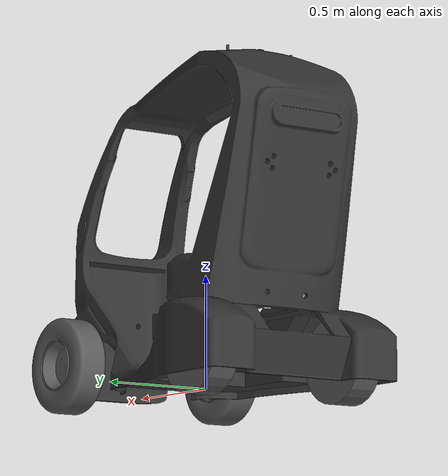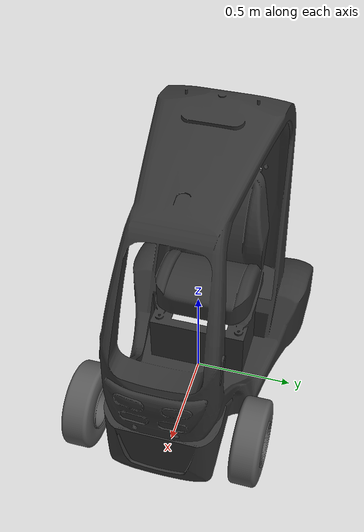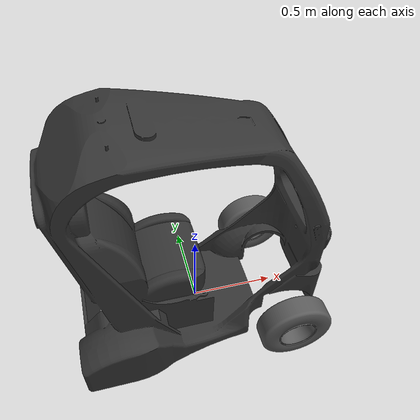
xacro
<?xml version="1.0"?>

<robot xmlns:xacro="http://www.ros.org/wiki/xacro" name="urban">

    <xacro:arg name="gpu" default="false"/>
    <xacro:property name="gpu" value="$(arg gpu)" />
    <xacro:arg name="organize_cloud" default="false"/>
    <xacro:property name="organize_cloud" value="$(arg organize_cloud)" />
    <xacro:arg name="enable_velodyne" default="false"/>
    <xacro:property name="enable_velodyne" value="$(arg enable_velodyne)"/>
    <xacro:arg name="enable_camera" default="false"/>
    <xacro:property name="enable_camera" value="$(arg enable_camera)"/>
    <xacro:arg name="enable_imu" default="false"/>
    <xacro:property name="enable_imu" value="$(arg enable_imu)"/>
    <xacro:arg name="enable_gps" default="false"/>
    <xacro:property name="enable_gps" value="$(arg enable_gps)"/>

    <!-- Include -->
    <xacro:include filename="$(find spawn_car)/model/urban/urdf/bases/urban_body.urdf.xacro"/>
    <xacro:include filename="$(find spawn_car)/model/urban/urdf/wheels/urban_suspension.urdf.xacro"/>
    <xacro:include filename="$(find spawn_car)/model/urban/urdf/vehicle_properties.urdf.xacro"/>
    <xacro:include filename="$(find spawn_car)/model/urban/urdf/sensors/camera.urdf.xacro"/>
    <xacro:include filename="$(find spawn_car)/model/urban/urdf/sensors/vlp-16.urdf.xacro"/>
    <xacro:include filename="$(find spawn_car)/model/urban/urdf/sensors/_d435.urdf.xacro"/>
    <xacro:include filename="$(find spawn_car)/model/urban/urdf/sensors/imu.urdf.xacro"/>
    <xacro:include filename="$(find spawn_car)/model/urban/urdf/sensors/gps.urdf.xacro"/>
    <xacro:include filename="$(find spawn_car)/model/urban/urdf/materials.urdf.xacro"/>

    <!-- Robots Elements -->
    <xacro:urban_base name="urban"/>
    <xacro:Front_Right_Wheel/>
    <xacro:Front_Left_Wheel/>
    <xacro:Rear_Right_Wheel/>
    <xacro:Rear_Left_Wheel/>

    <!-- Conditional sensor loading -->
    <xacro:if value="${enable_velodyne}">
        <xacro:VLP-16 parent="chassis" name="velodyne" topic="/velodyne_points" organize_cloud="${organize_cloud}" hz="10" samples="440" gpu="${gpu}">
            <origin xyz="0.3 0 1.30" rpy="0 0 0" />
        </xacro:VLP-16>
    </xacro:if>

    <xacro:if value="${enable_camera}">
        <xacro:sensor_d435 name="camera" topics_ns="camera" parent="chassis" publish_pointcloud="true">
            <origin xyz="0.8 0 0.4" rpy="0 0 0" />
        </xacro:sensor_d435>
    </xacro:if>

    <xacro:if value="${enable_imu}">
        <xacro:imu_sensor parent="chassis" name="imu">
            <origin xyz="0 0 0.5" rpy="0 0 0"/>
        </xacro:imu_sensor>
    </xacro:if>

    <xacro:if value="${enable_gps}">
        <xacro:gps_sensor parent="chassis" name="gps">
            <origin xyz="0 0 0.6" rpy="0 0 0"/>
        </xacro:gps_sensor>
    </xacro:if>

      <gazebo>
        <plugin name="p3d" filename="libgazebo_ros_p3d.so">
          <bodyName>chassis</bodyName>
          <topicName>base_pose_ground_truth</topicName>
          <frameName>map</frameName>
          <updateRate>100.0</updateRate>
        </plugin>
      </gazebo>

      <gazebo>
        <plugin name="gazebo_ros_control" filename="libgazebo_ros_control.so">
          <robotNamespace>/urban_model</robotNamespace>
          <!--The two lines below came from: https://answers.ros.org/question/292444/gazebo_ros_control-plugin-gazeboroscontrolplugin-missing-legacymodens-defaultrobothwsim/-->
          <robotSimType>gazebo_ros_control/DefaultRobotHWSim</robotSimType>
          <legacyModeNS>true</legacyModeNS>
        </plugin>
      </gazebo>

      <transmission name="front_left_steer_trans">
        <type>transmission_interface/SimpleTransmission</type>
        <actuator name="left_steer">
          <mechanicalReduction>1</mechanicalReduction>
        </actuator>
          <joint name="front_left_steer_joint">

          <!--this is a  mechanism for ros_control, it can be position, velocity, effort or something
              to communicate with hardware. See: https://wiki.ros.org/ros_control-->
            <hardwareInterface>hardware_interface/PositionJointInterface</hardwareInterface>
          </joint>
      </transmission>

      <transmission name="front_right_steer_trans">
        <type>transmission_interface/SimpleTransmission</type>
        <actuator name="right_steer">
          <mechanicalReduction>1</mechanicalReduction>
        </actuator>
          <joint name="front_right_steer_joint">
            <hardwareInterface>hardware_interface/PositionJointInterface</hardwareInterface>
          </joint>
      </transmission>

      <transmission name="rear_left_wheel_trans">
        <type>transmission_interface/SimpleTransmission</type>
        <actuator name="rear_left_motor">
          <mechanicalReduction>1</mechanicalReduction>
        </actuator>
          <joint name="rear_left_wheel_joint">
            <hardwareInterface>hardware_interface/EffortJointInterface</hardwareInterface>
          </joint>
      </transmission>

      <transmission name="rear_right_wheel_trans">
        <type>transmission_interface/SimpleTransmission</type>
        <actuator name="rear_right_motor">
          <mechanicalReduction>1</mechanicalReduction>
        </actuator>
          <joint name="rear_right_wheel_joint">
            <hardwareInterface>hardware_interface/EffortJointInterface</hardwareInterface>
          </joint>
      </transmission>
</robot>

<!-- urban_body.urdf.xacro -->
<!--
Created on Thu Jan 18 2024

@author: hifzhil
-->
<robot xmlns:xacro="http://www.ros.org/wiki/xacro" name="urban">
    <xacro:include filename="$(find spawn_car)/model/urban/urdf/vehicle_properties.urdf.xacro"/>
    <xacro:include filename="$(find spawn_car)/model/urban/urdf/bases/urban_body.gazebo.xacro"/>

    <material name="chassis_mat">
        <color rgba="0.2 0.2 0.2 1"/>
        <!-- grey -->
    </material>

    <xacro:macro name="urban_base" params="name">
        <link name="dummy">
            <visual>
                <origin xyz="0.0 0.0 0.5" rpy="0 0 0"/>
                <geometry>
                    <box size="0.001 0.001 0.001"/>
                </geometry>
            </visual>
        </link>

        <joint name="world_to_vehicle_center" type="fixed">
            <parent link="dummy"/>
            <child link="chassis"/>
            <origin xyz="0.0 0.0 0.0"/>
            <axis xyz = "0 0 1"/>
        </joint>

        <link name="chassis">

            <visual>
                <origin xyz="0.0 0.0 0.0" rpy="1.57079632679 0 1.57079632679"/>
                <geometry>
                  <mesh filename="file://$(find spawn_car)/model/urban/meshes/Car_body_transformed.stl" scale="0.001 0.001 0.001"/>
                </geometry>
                <material name="chassis_mat">
                    <color rgba="0.2 0.2 0.2 1"/>
                    <!-- grey -->
                </material>
            </visual>

            <collision>
                <origin xyz="0.0 0.0 0.0" rpy="1.57079632679 0 1.57079632679"/>
                <geometry>
                  <mesh filename="file://$(find spawn_car)/model/urban/meshes/Car_body_transformed.stl" scale="0.001 0.001 0.001"/>
                </geometry>
                <material name="chassis_mat">
                    <color rgba="0.2 0.2 0.2 1"/>
                    <!-- grey -->
                </material>
            </collision>

            <xacro:inertia_of_body/>
        </link>
    </xacro:macro>

</robot>

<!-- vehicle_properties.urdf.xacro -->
<!--
Created on Thu Jan 18 12:02:12 2024

@author: hifzhil
-->

<robot name="urban_properties" xmlns:xacro="http://www.ros.org/wiki/xacro">
    <!-- my name is urban-->

    <!-- CONSTANT -->
    <xacro:property name="pi_constant" value="3.14159265" />
    <xacro:property name = "degree_90" value="1.57079633"/>
    <xacro:property name = "degree_180" value="3.14159265"/>
    <xacro:property name = "degree_270" value="4.71239"/>
    <xacro:property name = "degree_360" value="6.28319"/>

    <xacro:property name="car_length" value="1.490" />
    <xacro:property name="car_width" value="0.830" />
    <xacro:property name="car_height" value="1.550" />
    <xacro:property name="front_overhang" value="0.220" />
    <xacro:property name="rear_overhang" value="0.280" />

    <!-- misalkan urban adalah balok -->
    <xacro:property name="vehicle_volume" value="${car_length*car_width*car_height}"/>

    <xacro:property name="ground_clearance" value="0.07" />
    <xacro:property name="wheel_base" value="0.98" />
    <!-- chassis -->
    <xacro:property name="chassis_width" value="0.830" />
    <xacro:property name="chassis_length" value="1.49" />
    <xacro:property name="chassis_thickness" value="1.00" />
    <xacro:property name="chassis_mass" value="250" />
       <!-- variable -->

    <!-- aluminium density is 2.7 g/cm³ or 2700 kg/m3-->
    <xacro:property name="body_density" value="2700.0" />
    <!-- density of all tyre brands is nearly the same which is around 1.1 gr/cm3 or 1100 kg/m3 -->
    <xacro:property name="wheel_density" value="1100.0" />

    <!-- fixed transformation
        this value on rad. 1.570795 is a phi/2
    -->
    <xacro:property name="wheel_cylindrical_transform" value="1.570795" />

    <xacro:property name="front_tyre_radius" value="0.19"/>
    <xacro:property name="front_tyre_width" value="0.125"/>
    <xacro:property name="front_tyre_mass" value="10.0"/>

    <xacro:property name="rear_tyre_radius" value="0.19"/>
    <xacro:property name="rear_tyre_width" value="0.125"/>
    <xacro:property name="rear_tyre_mass" value="10.0"/>

    <xacro:property name="front_track" value="0.830" />
    <xacro:property name="rear_track" value="0.750" />

    <!-- mass -->
    <!-- let assume the mass of box same as half aluminium at it size-->
    <xacro:property name="body_mass" value="${body_density*body_volume*(1/2)}"/>
    <xacro:property name="wheel_mass" value="${wheel_density*wheel_volume}"/>

    <!-- moment inertia of wheel -->
    <xacro:property name="Iz_wheel" value="${0.5*wheel_mass*wheel_radius*wheel_radius}"/>
    <xacro:property name="I_wheel" value="${1/12*wheel_mass*(3*wheel_radius*wheel_radius + wheel_length*wheel_length)}"/>

  <!-- this is macro that we can call it anywhere on code
      it defines all inertia component on the wheel
  -->
    <xacro:macro name="inertia_of_wheel">
        <inertial>
            <origin rpy="0 0 0" xyz="0 0 0"/>
            <mass value="${wheel_mass}"/>
            <inertia
                ixx="${I_wheel}"
                ixy="0.0"
                ixz="0.0"
                iyy="${I_wheel}"
                iyz="0.0"
                izz="${Iz_wheel}"
            />
        </inertial>
    </xacro:macro>

    <xacro:macro name="inertia_of_body">
        <inertial>
            <origin rpy="0 0 0" xyz="0 0 0"/>
            <mass value="${chassis_mass}"/>
            <inertia
                ixy="0.0"
                ixz="0.0"
                iyz="0.0"
                ixx = "${(1/12)*chassis_mass*(chassis_width*chassis_width + chassis_thickness*chassis_thickness)}"
                iyy = "${(1/12)*chassis_mass*(chassis_length*chassis_length + chassis_thickness*chassis_thickness)}"
                izz = "${(1/12)*chassis_mass*(chassis_length*chassis_length + chassis_width*chassis_width)}"
            />
        </inertial>
    </xacro:macro>
</robot>

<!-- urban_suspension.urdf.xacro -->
<!--
Created on Sat Jan 20 2024

@author: hifzhil
-->
<robot xmlns:xacro="http://www.ros.org/wiki/xacro" name="suspension urdf">

    <material name="tire_mat">
        <color rgba="0.35 0.35 0.35 1.0" />
    </material>

    <xacro:include filename="$(find spawn_car)/model/urban/urdf/wheels/suspension.gazebo.xacro"/>
    <xacro:include filename="$(find spawn_car)/model/urban/urdf/vehicle_properties.urdf.xacro"/>

    <xacro:property name="Iz_rear_wheel" value="${0.5*rear_tyre_mass*rear_tyre_radius*rear_tyre_radius}"/>
    <xacro:property name="I_rear_wheel" value="${1/12*rear_tyre_mass*(3*rear_tyre_radius*rear_tyre_radius + rear_tyre_width*rear_tyre_width)}"/>

    <xacro:property name="Iz_front_wheel" value="${0.5*front_tyre_mass*front_tyre_radius*front_tyre_radius}"/>
    <xacro:property name="I_front_wheel" value="${1/12*front_tyre_mass*(3*front_tyre_radius*front_tyre_radius + front_tyre_width*front_tyre_width)}"/>

    <xacro:macro name="inertia_of_front_wheel">
        <inertial>
          <origin rpy="0 0 0" xyz="0 0 0"/>
          <mass value="${front_tyre_mass}"/>
          <inertia
            ixx="${I_front_wheel}"
            ixy="0.0"
            ixz="0.0"
            iyy="${I_front_wheel}"
            iyz="0.0"
            izz="${Iz_front_wheel}"
          />
        </inertial>
    </xacro:macro>

    <xacro:macro name="inertia_of_rear_wheel">
        <inertial>
          <origin rpy="0 0 0" xyz="0 0 0"/>
          <mass value="${rear_tyre_mass}"/>
          <inertia
            ixx="${I_rear_wheel}"
            ixy="0.0"
            ixz="0.0"
            iyy="${I_rear_wheel}"
            iyz="0.0"
            izz="${Iz_rear_wheel}"
          />
        </inertial>
    </xacro:macro>

    <xacro:macro name="Front_Left_Wheel">
        <joint name="front_left_steer_joint" type="revolute">
            <parent link="chassis"/>
            <child link="fl_axle"/>
            <origin rpy="${degree_90} 0 0" xyz="${wheel_base/2} ${front_track/2} ${front_tyre_radius - ground_clearance}"/>
            <axis xyz="0 -1 0"/>
            <limit lower="-0.785398" upper="0.785398" effort="500000" velocity="250"/>
        </joint>
        <joint name="front_left_wheel_joint" type="continuous">
            <parent link="fl_axle"/>
            <child link="front_left_wheel"/>
            <origin xyz="0 0 0" rpy="0 0 0"/>
            <axis xyz="0 0 -1"/>
            <limit effort="1000" velocity="1000"/>
            <dynamics damping="1.0" friction="1.0"/>
        </joint>
    </xacro:macro>

    <xacro:macro name="Front_Right_Wheel">
        <joint name="front_right_steer_joint" type="revolute">
            <parent link="chassis"/>
            <child link="fr_axle"/>
            <origin rpy="${degree_90} 0 0" xyz="${wheel_base/2} ${-front_track/2} ${front_tyre_radius - ground_clearance}"/>
            <axis xyz="0 -1 0"/>
            <limit lower="-0.785398" upper="0.785398" effort="500000" velocity="250"/>
        </joint>
        <joint name="front_right_wheel_joint" type="continuous">
            <parent link="fr_axle"/>
            <child link="front_right_wheel"/>
            <origin xyz="0 0 0" rpy="0 0 0"/>
            <axis xyz="0 0 -1"/>
            <limit effort="1000" velocity="1000"/>
            <dynamics damping="1.0" friction="1.0"/>
        </joint>
    </xacro:macro>

    <xacro:macro name="Rear_Left_Wheel">
        <joint name="rear_left_wheel_joint" type="continuous">
            <parent link="chassis"/>
            <child link="rear_left_wheel"/>
            <origin rpy="${degree_90} 0 0" xyz="${-wheel_base/2} ${rear_track/2} ${rear_tyre_radius - ground_clearance - 0.02}"/>
            <axis xyz="0 0 -1"/>
            <limit effort="1000" velocity="1000"/>
            <dynamics damping="1.0" friction="1.0"/>
        </joint>
    </xacro:macro>

    <xacro:macro name="Rear_Right_Wheel">
        <joint name="rear_right_wheel_joint" type="continuous">
            <parent link="chassis"/>
            <child link="rear_right_wheel"/>
            <origin rpy="${degree_90} 0 0" xyz="${-wheel_base/2} ${-rear_track/2} ${rear_tyre_radius - ground_clearance - 0.02}"/>
            <axis xyz="0 0 -1"/>
            <limit effort="1000" velocity="1000"/>
            <dynamics damping="1.0" friction="1.0"/>
        </joint>
    </xacro:macro>

    <link name="fl_axle">
        <inertial>
            <mass value="1"/>
            <origin xyz="0 0 0"/>
            <inertia ixx="0.004" ixy="0.0" ixz="0.0" iyy="0.004" iyz="0.0" izz="0.004"/>
        </inertial>
        <collision>
            <geometry>
                <box size="0.005 0.005 0.005" />
            </geometry>
        </collision>
        <visual>
            <geometry>
                <box size="0.005 0.005 0.005" />
            </geometry>
        </visual>
    </link>

    <link name="fr_axle">
        <inertial>
            <mass value="1"/>
            <origin xyz="0 0 0"/>
            <inertia ixx="0.004" ixy="0.0" ixz="0.0" iyy="0.004" iyz="0.0" izz="0.004"/>
        </inertial>
        <collision>
            <geometry>
              <box size="0.005 0.005 0.005" />
            </geometry>
        </collision>
        <visual>
            <geometry>
              <box size="0.005 0.005 0.005" />
            </geometry>
        </visual>
    </link>

    <link name="front_right_wheel">
        <visual>
            <origin rpy="0 0 0" xyz="0 0 0"/>
            <geometry>
                <mesh filename="file://$(find spawn_car)/model/urban/meshes/mevi_tire.stl" scale="0.001 0.001 0.001"/>
            </geometry>
            <material name="tire_mat"/>
        </visual>
        <collision>
            <origin rpy="0 0 0" xyz="0 0 0"/>
            <geometry>
                <mesh filename="file://$(find spawn_car)/model/urban/meshes/mevi_tire.stl" scale="0.001 0.001 0.001"/>
            </geometry>
        </collision>
        <xacro:inertia_of_front_wheel/>
    </link>

    <link name="front_left_wheel">
        <visual>
            <origin rpy="0 0 0" xyz="0 0 0"/>
            <geometry>
                <mesh filename="file://$(find spawn_car)/model/urban/meshes/mevi_tire.stl" scale="0.001 0.001 0.001"/>
            </geometry>
            <material name="tire_mat"/>
        </visual>
        <collision>
            <origin rpy="0 0 0" xyz="0 0 0"/>
            <geometry>
                <mesh filename="file://$(find spawn_car)/model/urban/meshes/mevi_tire.stl" scale="0.001 0.001 0.001"/>
            </geometry>
        </collision>
        <xacro:inertia_of_front_wheel/>
    </link>

    <link name="rear_right_wheel">
        <visual>
            <origin rpy="0 0 0" xyz="0 0 0"/>
            <geometry>
                <cylinder length="${rear_tyre_width}" radius="${rear_tyre_radius}"/>
            </geometry>
            <material name="tire_mat"/>
        </visual>
        <collision>
            <origin rpy="0 0 0" xyz="0 0 0"/>
            <geometry>
                <cylinder length="${rear_tyre_width}" radius="${rear_tyre_radius}"/>
            </geometry>
        </collision>
        <xacro:inertia_of_rear_wheel/>
    </link>

    <link name="rear_left_wheel">
        <visual>
            <origin rpy="0 0 0" xyz="0 0 0"/>
            <geometry>
                <cylinder length="${rear_tyre_width}" radius="${rear_tyre_radius}"/>
            </geometry>
            <material name="tire_mat"/>
        </visual>
        <collision>
            <origin rpy="0 0 0" xyz="0 0 0"/>
            <geometry>
                <cylinder length="${rear_tyre_width}" radius="${rear_tyre_radius}"/>
            </geometry>
        </collision>
        <xacro:inertia_of_rear_wheel/>
    </link>
</robot>

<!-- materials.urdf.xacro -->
<robot xmlns:xacro="http://www.ros.org/wiki/xacro">
    <material name="red">
        <color rgba="1 0 0 1"/>
    </material>

    <material name="black">
        <color rgba="0 0 0 1"/>
    </material>
</robot>
